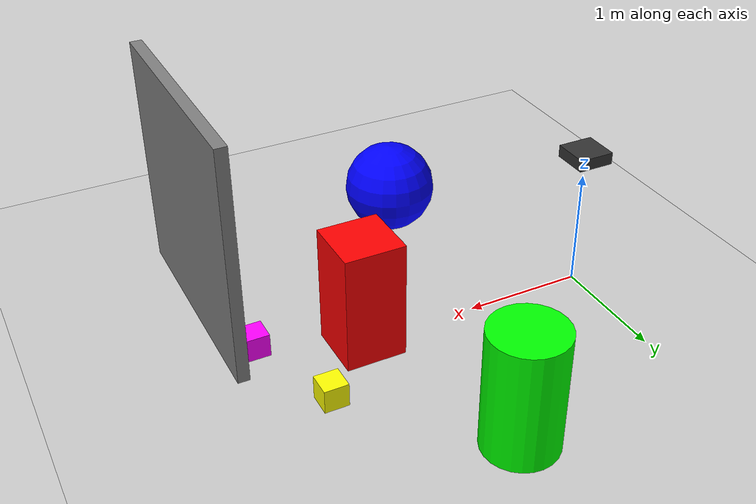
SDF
<?xml version="1.0"?>
<sdf version="1.6">
  <world name="dwa_3d_world">

    <!-- Physics -->
    <physics name="default_physics" default="0" type="ode">
      <max_step_size>0.001</max_step_size>
      <real_time_factor>1.0</real_time_factor>
      <real_time_update_rate>1000</real_time_update_rate>
    </physics>

    <!-- Scene -->
    <scene>
      <ambient>0.4 0.4 0.4 1</ambient>
      <background>0.7 0.7 0.7 1</background>
      <shadows>true</shadows>
    </scene>

    <!-- Light -->
    <light type="directional" name="sun">
      <cast_shadows>true</cast_shadows>
      <pose>0 0 10 0 0 0</pose>
      <diffuse>0.8 0.8 0.8 1</diffuse>
      <specular>0.2 0.2 0.2 1</specular>
      <attenuation>
        <range>1000</range>
        <constant>0.9</constant>
        <linear>0.01</linear>
        <quadratic>0.001</quadratic>
      </attenuation>
      <direction>-0.5 0.1 -0.9</direction>
    </light>

    <!-- Ground Plane -->
    <model name="ground_plane">
      <static>true</static>
      <link name="link">
        <collision name="collision">
          <geometry>
            <plane>
              <normal>0 0 1</normal>
              <size>100 100</size>
            </plane>
          </geometry>
        </collision>
        <visual name="visual">
          <geometry>
            <plane>
              <normal>0 0 1</normal>
              <size>100 100</size>
            </plane>
          </geometry>
          <material>
            <ambient>0.8 0.8 0.8 1</ambient>
            <diffuse>0.8 0.8 0.8 1</diffuse>
            <specular>0.8 0.8 0.8 1</specular>
          </material>
        </visual>
      </link>
    </model>

    <!-- Box Obstacle 1 -->
    <model name="box_obstacle_1">
      <pose>2 0 0.5 0 0 0</pose>
      <static>true</static>
      <link name="link">
        <collision name="collision">
          <geometry>
            <box>
              <size>0.5 0.5 1.0</size>
            </box>
          </geometry>
        </collision>
        <visual name="visual">
          <geometry>
            <box>
              <size>0.5 0.5 1.0</size>
            </box>
          </geometry>
          <material>
            <ambient>1 0 0 1</ambient>
            <diffuse>1 0 0 1</diffuse>
            <specular>0.1 0.1 0.1 1</specular>
          </material>
        </visual>
      </link>
    </model>

    <!-- Cylinder Obstacle 1 -->
    <model name="cylinder_obstacle_1">
      <pose>1.5 1.5 0.5 0 0 0</pose>
      <static>true</static>
      <link name="link">
        <collision name="collision">
          <geometry>
            <cylinder>
              <radius>0.3</radius>
              <length>1.0</length>
            </cylinder>
          </geometry>
        </collision>
        <visual name="visual">
          <geometry>
            <cylinder>
              <radius>0.3</radius>
              <length>1.0</length>
            </cylinder>
          </geometry>
          <material>
            <ambient>0 1 0 1</ambient>
            <diffuse>0 1 0 1</diffuse>
            <specular>0.1 0.1 0.1 1</specular>
          </material>
        </visual>
      </link>
    </model>

    <!-- Sphere Obstacle 1 -->
    <model name="sphere_obstacle_1">
      <pose>1 -1.5 0.4 0 0 0</pose>
      <static>true</static>
      <link name="link">
        <collision name="collision">
          <geometry>
            <sphere>
              <radius>0.4</radius>
            </sphere>
          </geometry>
        </collision>
        <visual name="visual">
          <geometry>
            <sphere>
              <radius>0.4</radius>
            </sphere>
          </geometry>
          <material>
            <ambient>0 0 1 1</ambient>
            <diffuse>0 0 1 1</diffuse>
            <specular>0.1 0.1 0.1 1</specular>
          </material>
        </visual>
      </link>
    </model>

    <!-- Wall Obstacle -->
    <model name="wall_obstacle">
      <pose>3 -1 1 0 0 0</pose>
      <static>true</static>
      <link name="link">
        <collision name="collision">
          <geometry>
            <box>
              <size>0.1 2 2</size>
            </box>
          </geometry>
        </collision>
        <visual name="visual">
          <geometry>
            <box>
              <size>0.1 2 2</size>
            </box>
          </geometry>
          <material>
            <ambient>0.5 0.5 0.5 1</ambient>
            <diffuse>0.5 0.5 0.5 1</diffuse>
            <specular>0.1 0.1 0.1 1</specular>
          </material>
        </visual>
      </link>
    </model>

    <!-- Multiple Small Obstacles -->
    <model name="small_box_1">
      <pose>2.5 0.5 0.1 0 0 0</pose>
      <static>true</static>
      <link name="link">
        <collision name="collision">
          <geometry>
            <box>
              <size>0.2 0.2 0.2</size>
            </box>
          </geometry>
        </collision>
        <visual name="visual">
          <geometry>
            <box>
              <size>0.2 0.2 0.2</size>
            </box>
          </geometry>
          <material>
            <ambient>1 1 0 1</ambient>
            <diffuse>1 1 0 1</diffuse>
            <specular>0.1 0.1 0.1 1</specular>
          </material>
        </visual>
      </link>
    </model>

    <model name="small_box_2">
      <pose>2.8 -0.3 0.1 0 0 0</pose>
      <static>true</static>
      <link name="link">
        <collision name="collision">
          <geometry>
            <box>
              <size>0.2 0.2 0.2</size>
            </box>
          </geometry>
        </collision>
        <visual name="visual">
          <geometry>
            <box>
              <size>0.2 0.2 0.2</size>
            </box>
          </geometry>
          <material>
            <ambient>1 0 1 1</ambient>
            <diffuse>1 0 1 1</diffuse>
            <specular>0.1 0.1 0.1 1</specular>
          </material>
        </visual>
      </link>
    </model>

    <!-- Depth Camera Platform/Mount -->
    <model name="camera_platform">
      <pose>0 0 1.2 0 0 0</pose>
      <static>true</static>
      <link name="link">
        <collision name="collision">
          <geometry>
            <box>
              <size>0.3 0.3 0.1</size>
            </box>
          </geometry>
        </collision>
        <visual name="visual">
          <geometry>
            <box>
              <size>0.3 0.3 0.1</size>
            </box>
          </geometry>
          <material>
            <ambient>0.2 0.2 0.2 1</ambient>
            <diffuse>0.2 0.2 0.2 1</diffuse>
            <specular>0.5 0.5 0.5 1</specular>
          </material>
        </visual>
      </link>
    </model>

  </world>
</sdf>
